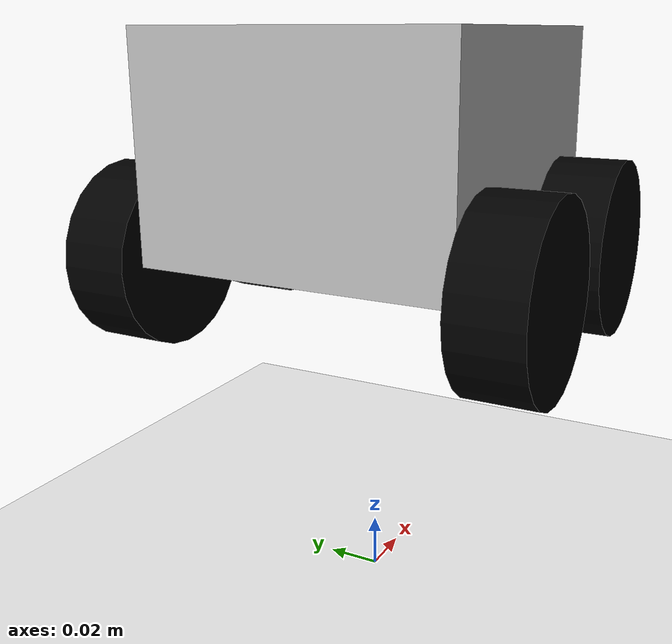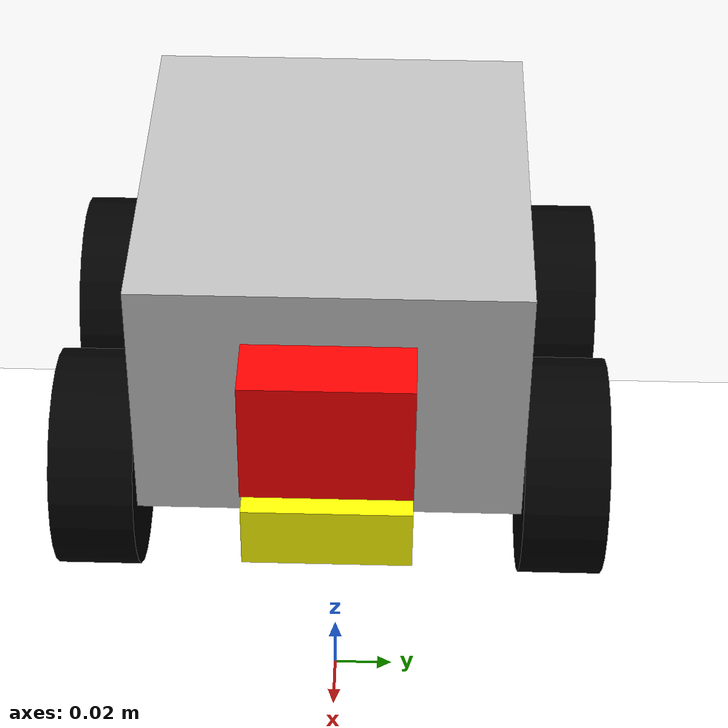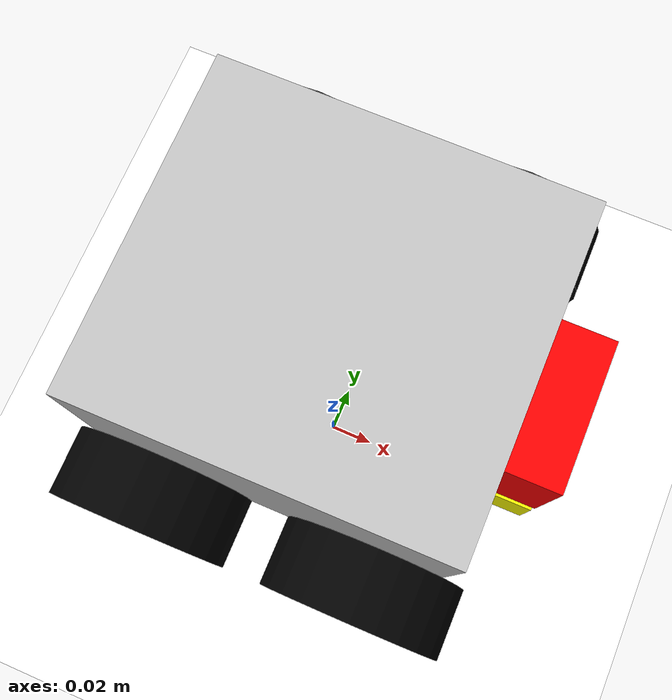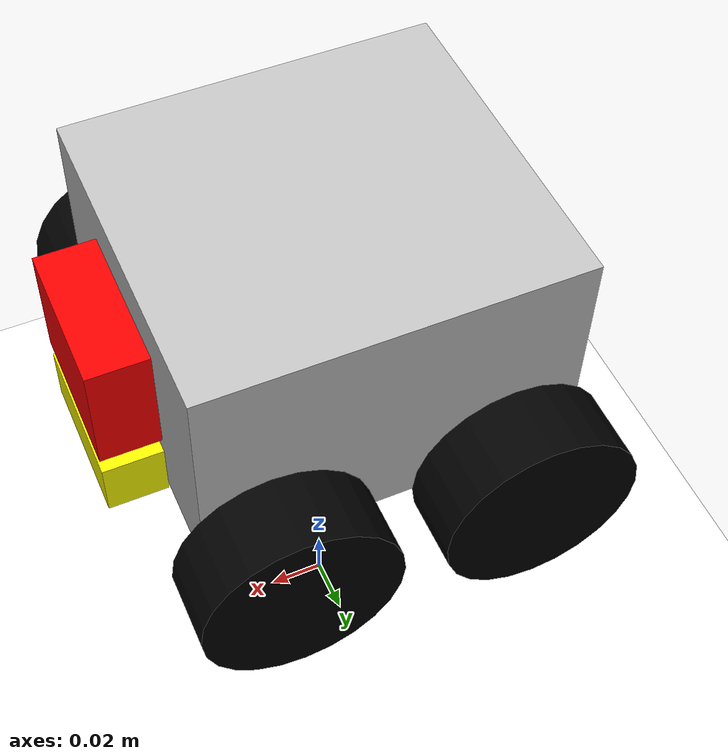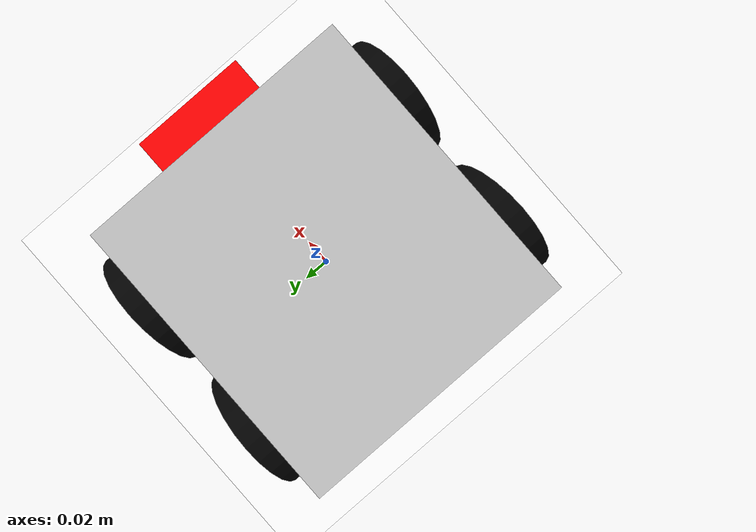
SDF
<?xml version="1.0" ?>
<sdf version="1.7">
  <world name="simple_map_world">
    <!-- 직접 정의한 조명 -->
    <light name="my_light" type="directional">
      <cast_shadows>true</cast_shadows>
      <pose>0 0 10 0 -0.5 0</pose>
      <diffuse>1 1 1 1</diffuse>
      <specular>0.2 0.2 0.2 1</specular>
      <attenuation>
        <range>100</range>
        <constant>0.9</constant>
        <linear>0.01</linear>
        <quadratic>0.001</quadratic>
      </attenuation>
      <direction>-0.5 0 -1</direction>
    </light>

    <!-- 커스텀 바닥 평면 -->
    <model name="custom_ground">
      <static>true</static>
      <link name="ground_link">
        <collision name="ground_collision">
          <geometry>
            <plane>
              <normal>0 0 1</normal>
              <size>20 20</size>
            </plane>
          </geometry>
        </collision>
        <visual name="ground_visual">
          <geometry>
            <plane>
              <normal>0 0 1</normal>
              <size>20 20</size>
            </plane>
          </geometry>
          <material>
            <ambient>0.3 0.3 0.3 1</ambient>
            <diffuse>0.6 0.6 0.6 1</diffuse>
            <specular>0.1 0.1 0.1 1</specular>
          </material>
        </visual>
      </link>
    </model>

    <!-- 경기장 PNG 배경 -->
    <model name="arena_map">
      <static>true</static>
      <link name="link">
        <visual name="visual">
          <geometry>
            <plane>
              <normal>0 0 1</normal>
              <size>9.6 7.2</size>
            </plane>
          </geometry>
          <material>
            <script>
              <!-- material 파일 경로 -->
              <uri>file:///home/pi/ros2_ws_forpc/Map/aMAP.material</uri>
              <name>ArenaMap</name>
            </script>
            <ambient>1 1 1 1</ambient>
            <diffuse>1 1 1 1</diffuse>
            <specular>0 0 0 1</specular>
          </material>
          <pose>0 0 0.002 0 0 0</pose>
        </visual>
        <collision name="collision">
          <geometry>
            <plane>
              <normal>0 0 1</normal>
              <size>9.6 7.2</size>
            </plane>
          </geometry>
        </collision>
      </link>
    </model>
    <include>
      <uri>model://simple_bot</uri>
      <name>simple_bot</name>
      <pose>0 0 0.1 0 0 0</pose>
    </include>
  </world>
</sdf>

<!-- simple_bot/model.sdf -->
<sdf version='1.11'>
  <model name='simple_bot'>
    <link name='base_link'>
      <inertial>
        <pose>0 0 0 0 0 0</pose>
        <mass>1</mass>
        <inertia>
          <ixx>0.001</ixx>
          <ixy>0</ixy>
          <ixz>0</ixz>
          <iyy>0.001</iyy>
          <iyz>0</iyz>
          <izz>0.001</izz>
        </inertia>
      </inertial>
      <collision name='base_link_fixed_joint_lump__base_collision_collision'>
        <pose>0 0 0.073000000000000009 0 0 0</pose>
        <geometry>
          <box>
            <size>0.125 0.115 0.080000000000000002</size>
          </box>
        </geometry>
      </collision>
      <visual name='base_link_visual'>
        <pose>0 0 0.073000000000000009 0 0 0</pose>
        <geometry>
          <box>
            <size>0.125 0.115 0.080000000000000002</size>
          </box>
        </geometry>
        <material>
          <diffuse>0.75000006 0.75000006 0.75000006 1</diffuse>
          <ambient>0.75000006 0.75000006 0.75000006 1</ambient>
        </material>
      </visual>
      <visual name='base_link_fixed_joint_lump__camera_link_visual_1'>
        <pose>0.072499999999999995 0 0.075999999999999998 0 0 0</pose>
        <geometry>
          <box>
            <size>0.02 0.050000000000000003 0.040000000000000001</size>
          </box>
        </geometry>
        <material>
          <diffuse>1 0 0 1</diffuse>
          <ambient>1 0 0 1</ambient>
        </material>
      </visual>
      <visual name='base_link_fixed_joint_lump__ultrasonic_link_visual_2'>
        <pose>0.072499999999999995 0 0.040000000000000001 0 0 0</pose>
        <geometry>
          <box>
            <size>0.02 0.050000000000000003 0.02</size>
          </box>
        </geometry>
        <material>
          <diffuse>1 1 0 1</diffuse>
          <ambient>1 1 0 1</ambient>
        </material>
      </visual>
    </link>
    <joint name='left_front_wheel_joint' type='revolute'>
      <pose relative_to='base_link'>0.040000000000000001 0.070000000000000007 0.033000000000000002 0 0 0</pose>
      <parent>base_link</parent>
      <child>left_front_wheel_link</child>
      <axis>
        <xyz>0 1 0</xyz>
        <limit>
          <lower>-inf</lower>
          <upper>inf</upper>
        </limit>
        <dynamics>
          <spring_reference>0</spring_reference>
          <spring_stiffness>0</spring_stiffness>
        </dynamics>
      </axis>
    </joint>
    <link name='left_front_wheel_link'>
      <pose relative_to='left_front_wheel_joint'>0 0 0 0 0 0</pose>
      <inertial>
        <pose>0 0 0 0 0 0</pose>
        <mass>0.20000000000000001</mass>
        <inertia>
          <ixx>5.5999999999999999e-05</ixx>
          <ixy>0</ixy>
          <ixz>0</ixz>
          <iyy>5.5999999999999999e-05</iyy>
          <iyz>0</iyz>
          <izz>9.0000000000000006e-05</izz>
        </inertia>
      </inertial>
      <collision name='left_front_wheel_link_fixed_joint_lump__left_front_wheel_collision_collision'>
        <pose>0 0 0 1.5708 0 0</pose>
        <geometry>
          <cylinder>
            <length>0.025000000000000001</length>
            <radius>0.033000000000000002</radius>
          </cylinder>
        </geometry>
      </collision>
      <visual name='left_front_wheel_link_visual'>
        <pose>0 0 0 1.5708 0 0</pose>
        <geometry>
          <cylinder>
            <length>0.025000000000000001</length>
            <radius>0.033000000000000002</radius>
          </cylinder>
        </geometry>
        <material>
          <diffuse>0 0 0 1</diffuse>
          <ambient>0 0 0 1</ambient>
        </material>
      </visual>
    </link>
    <joint name='left_rear_wheel_joint' type='revolute'>
      <pose relative_to='base_link'>-0.040000000000000001 0.070000000000000007 0.033000000000000002 0 0 0</pose>
      <parent>base_link</parent>
      <child>left_rear_wheel_link</child>
      <axis>
        <xyz>0 1 0</xyz>
        <limit>
          <lower>-inf</lower>
          <upper>inf</upper>
        </limit>
        <dynamics>
          <spring_reference>0</spring_reference>
          <spring_stiffness>0</spring_stiffness>
        </dynamics>
      </axis>
    </joint>
    <link name='left_rear_wheel_link'>
      <pose relative_to='left_rear_wheel_joint'>0 0 0 0 0 0</pose>
      <inertial>
        <pose>0 0 0 0 0 0</pose>
        <mass>0.20000000000000001</mass>
        <inertia>
          <ixx>5.5999999999999999e-05</ixx>
          <ixy>0</ixy>
          <ixz>0</ixz>
          <iyy>5.5999999999999999e-05</iyy>
          <iyz>0</iyz>
          <izz>9.0000000000000006e-05</izz>
        </inertia>
      </inertial>
      <collision name='left_rear_wheel_link_fixed_joint_lump__left_rear_wheel_collision_collision'>
        <pose>0 0 0 1.5708 0 0</pose>
        <geometry>
          <cylinder>
            <length>0.025000000000000001</length>
            <radius>0.033000000000000002</radius>
          </cylinder>
        </geometry>
      </collision>
      <visual name='left_rear_wheel_link_visual'>
        <pose>0 0 0 1.5708 0 0</pose>
        <geometry>
          <cylinder>
            <length>0.025000000000000001</length>
            <radius>0.033000000000000002</radius>
          </cylinder>
        </geometry>
        <material>
          <diffuse>0 0 0 1</diffuse>
          <ambient>0 0 0 1</ambient>
        </material>
      </visual>
    </link>
    <joint name='right_front_wheel_joint' type='revolute'>
      <pose relative_to='base_link'>0.040000000000000001 -0.070000000000000007 0.033000000000000002 0 0 0</pose>
      <parent>base_link</parent>
      <child>right_front_wheel_link</child>
      <axis>
        <xyz>0 1 0</xyz>
        <limit>
          <lower>-inf</lower>
          <upper>inf</upper>
        </limit>
        <dynamics>
          <spring_reference>0</spring_reference>
          <spring_stiffness>0</spring_stiffness>
        </dynamics>
      </axis>
    </joint>
    <link name='right_front_wheel_link'>
      <pose relative_to='right_front_wheel_joint'>0 0 0 0 0 0</pose>
      <inertial>
        <pose>0 0 0 0 0 0</pose>
        <mass>0.20000000000000001</mass>
        <inertia>
          <ixx>5.5999999999999999e-05</ixx>
          <ixy>0</ixy>
          <ixz>0</ixz>
          <iyy>5.5999999999999999e-05</iyy>
          <iyz>0</iyz>
          <izz>9.0000000000000006e-05</izz>
        </inertia>
      </inertial>
      <collision name='right_front_wheel_link_fixed_joint_lump__right_front_wheel_collision_collision'>
        <pose>0 0 0 1.5708 0 0</pose>
        <geometry>
          <cylinder>
            <length>0.025000000000000001</length>
            <radius>0.033000000000000002</radius>
          </cylinder>
        </geometry>
      </collision>
      <visual name='right_front_wheel_link_visual'>
        <pose>0 0 0 1.5708 0 0</pose>
        <geometry>
          <cylinder>
            <length>0.025000000000000001</length>
            <radius>0.033000000000000002</radius>
          </cylinder>
        </geometry>
        <material>
          <diffuse>0 0 0 1</diffuse>
          <ambient>0 0 0 1</ambient>
        </material>
      </visual>
    </link>
    <joint name='right_rear_wheel_joint' type='revolute'>
      <pose relative_to='base_link'>-0.040000000000000001 -0.070000000000000007 0.033000000000000002 0 0 0</pose>
      <parent>base_link</parent>
      <child>right_rear_wheel_link</child>
      <axis>
        <xyz>0 1 0</xyz>
        <limit>
          <lower>-inf</lower>
          <upper>inf</upper>
        </limit>
        <dynamics>
          <spring_reference>0</spring_reference>
          <spring_stiffness>0</spring_stiffness>
        </dynamics>
      </axis>
    </joint>
    <link name='right_rear_wheel_link'>
      <pose relative_to='right_rear_wheel_joint'>0 0 0 0 0 0</pose>
      <inertial>
        <pose>0 0 0 0 0 0</pose>
        <mass>0.20000000000000001</mass>
        <inertia>
          <ixx>5.5999999999999999e-05</ixx>
          <ixy>0</ixy>
          <ixz>0</ixz>
          <iyy>5.5999999999999999e-05</iyy>
          <iyz>0</iyz>
          <izz>9.0000000000000006e-05</izz>
        </inertia>
      </inertial>
      <visual name='right_rear_wheel_link_visual'>
        <pose>0 0 0 1.5708 0 0</pose>
        <geometry>
          <cylinder>
            <length>0.025000000000000001</length>
            <radius>0.033000000000000002</radius>
          </cylinder>
        </geometry>
        <material>
          <diffuse>0 0 0 1</diffuse>
          <ambient>0 0 0 1</ambient>
        </material>
      </visual>
    </link>
    <frame name='camera_joint' attached_to='base_link'>
      <pose>0.072499999999999995 0 0.075999999999999998 0 0 0</pose>
    </frame>
    <frame name='camera_link' attached_to='camera_joint'>
      <pose>0 0 0 0 0 0</pose>
    </frame>
    <frame name='ultrasonic_joint' attached_to='base_link'>
      <pose>0.072499999999999995 0 0.040000000000000001 0 0 0</pose>
    </frame>
    <frame name='ultrasonic_link' attached_to='ultrasonic_joint'>
      <pose>0 0 0 0 0 0</pose>
    </frame>
  </model>
</sdf>
